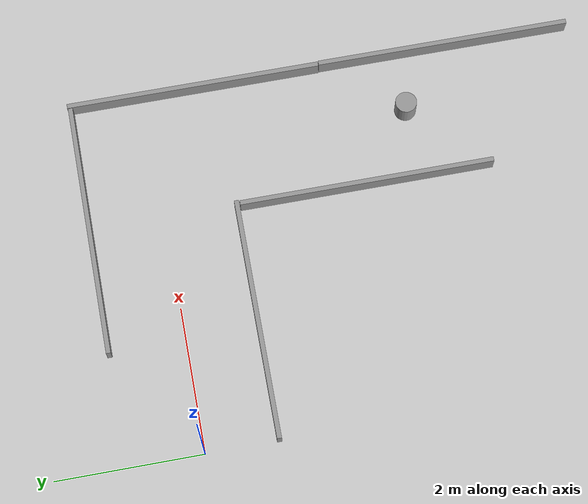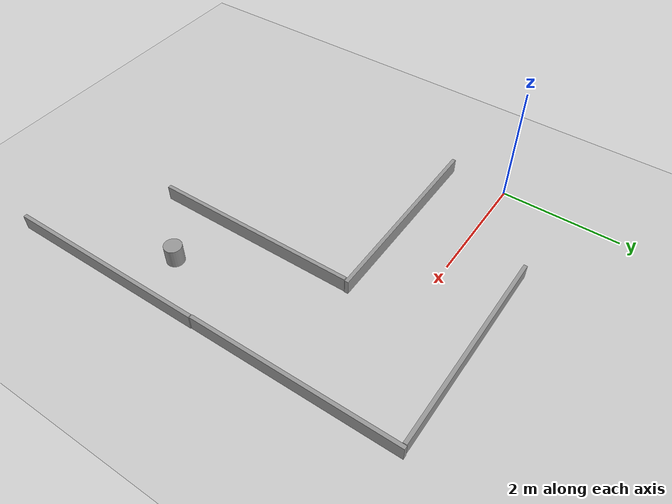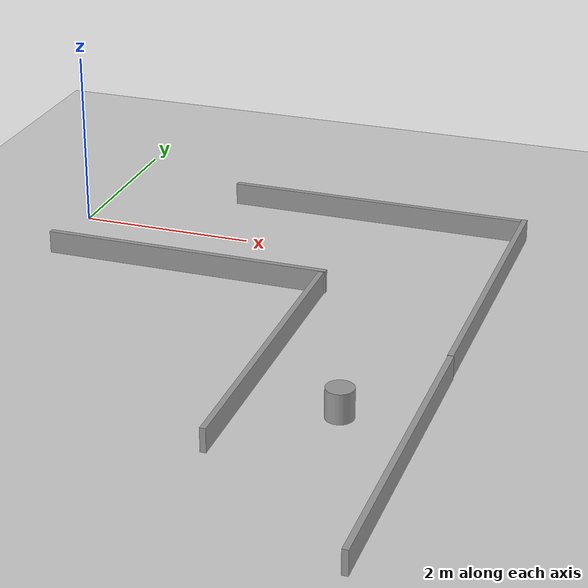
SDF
<sdf version="1.6">
 <world name="default">
  <light name="sun" type="directional">
   <pose>0 0 10 0 -0 0</pose>
   <diffuse>0.8 0.8 0.8 1</diffuse>
   <specular>0.2 0.2 0.2 1</specular>
   <attenuation>
    <range>1000</range>
    <constant>0.9</constant>
    <linear>0.01</linear>
    <quadratic>0.001</quadratic>
   </attenuation>
   <direction>-0.5 0.1 -0.9</direction>
   <spot><inner_angle>0</inner_angle><outer_angle>0</outer_angle><falloff>0</falloff></spot>
  </light>
  <model name="ground_plane">
   <static>1</static>
   <link name="link">
    <collision name="collision">
     <geometry><plane><normal>0 0 1</normal><size>100 100</size></plane></geometry>
     <surface><friction><ode><mu>100</mu><mu2>50</mu2></ode></friction></surface>
    </collision>
    <visual name="visual">
     <cast_shadows>0</cast_shadows>
     <geometry><plane><normal>0 0 1</normal><size>100 100</size></plane></geometry>
     <material>
      <script><uri>file://media/materials/scripts/gazebo.material</uri><name>Gazebo/Grey</name></script>
     </material>
    </visual>
   </link>
  </model>
  <gravity>0 0 -9.8</gravity>
  <magnetic_field>6e-06 2.3e-05 -4.2e-05</magnetic_field>
  <atmosphere type="adiabatic"/>
  <physics type="ode">
   <max_step_size>0.001</max_step_size>
   <real_time_factor>1</real_time_factor>
   <real_time_update_rate>1000</real_time_update_rate>
  </physics>
  <scene><ambient>0.4 0.4 0.4 1</ambient><background>0.7 0.7 0.7 1</background><shadows>1</shadows></scene>
  <spherical_coordinates>
   <surface_model>EARTH_WGS84</surface_model>
   <latitude_deg>0</latitude_deg>
   <longitude_deg>0</longitude_deg>
   <elevation>0</elevation>
   <heading_deg>0</heading_deg>
  </spherical_coordinates>
  <model name="unit_box">
   <pose>1.6404 -0.984582 0.129158 2.9e-05 -0.000282 0.000324</pose>
   <link name="link">
    <inertial>
     <mass>1</mass>
     <inertia>
      <ixx>0.166667</ixx>
      <ixy>0</ixy>
      <ixz>0</ixz>
      <iyy>0.166667</iyy>
      <iyz>0</iyz>
      <izz>0.166667</izz>
     </inertia>
    </inertial>
    <collision name="collision">
     <geometry><box><size>3.30281 0.0632256 0.259247</size></box></geometry>
    </collision>
    <visual name="visual">
     <geometry><box><size>3.30281 0.0632256 0.259247</size></box></geometry>
     <material>
      <script><name>Gazebo/Grey</name><uri>file://media/materials/scripts/gazebo.material</uri></script>
     </material>
    </visual>
   </link>
  </model>
  <model name="unit_box_clone">
   <pose>3.2584 1.03081 0.12933 0.0003 0.000173 3e-05</pose>
   <link name="link">
    <inertial>
     <mass>1</mass>
     <inertia>
      <ixx>0.166667</ixx>
      <ixy>0</ixy>
      <ixz>0</ixz>
      <iyy>0.166667</iyy>
      <iyz>0</iyz>
      <izz>0.166667</izz>
     </inertia>
    </inertial>
    <collision name="collision"><geometry><box><size>3.49852 0.063226 0.259247</size></box></geometry></collision>
    <visual name="visual">
     <geometry><box><size>3.49852 0.063226 0.259247</size></box></geometry>
     <material>
      <script><name>Gazebo/Grey</name><uri>file://media/materials/scripts/gazebo.material</uri></script>
     </material>
    </visual>
   </link>
  </model>
  <model name="unit_box_clone_clone">
   <pose>5.04703 -0.6794 0.12933 0.0003 0.000173 -1.57007</pose>
   <link name="link">
    <inertial>
     <mass>1</mass>
     <inertia>
      <ixx>0.166667</ixx>
      <ixy>0</ixy>
      <ixz>0</ixz>
      <iyy>0.166667</iyy>
      <iyz>0</iyz>
      <izz>0.166667</izz>
     </inertia>
    </inertial>
    <collision name="collision"><geometry><box><size>3.49853 0.063226 0.259247</size></box></geometry></collision>
    <visual name="visual">
     <geometry><box><size>3.49853 0.063226 0.259247</size></box></geometry>
     <material>
      <script><name>Gazebo/Grey</name><uri>file://media/materials/scripts/gazebo.material</uri></script>
     </material>
    </visual>
   </link>
  </model>
  <model name="unit_cylinder">
   <pose>4.24734 -3.50714 0.163575 -1e-06 -1e-06 0</pose>
   <link name="link">
    <inertial>
     <mass>1</mass>
     <inertia><ixx>0.145833</ixx><ixy>0</ixy><ixz>0</ixz><iyy>0.145833</iyy><iyz>0</iyz><izz>0.125</izz></inertia>
    </inertial>
    <collision name="collision">
     <geometry><cylinder><radius>0.147417</radius><length>0.327169</length></cylinder></geometry>
    </collision>
    <visual name="visual">
     <geometry><cylinder><radius>0.147417</radius><length>0.327169</length></cylinder></geometry>
     <material>
      <script><name>Gazebo/Grey</name><uri>file://media/materials/scripts/gazebo.material</uri></script>
     </material>
    </visual>
   </link>
  </model>
  <model name="unit_box_clone_clone_clone">
   <pose>5.05802 -4.18651 0.129305 0.000303 0.000187 -1.57007</pose>
   <link name="link">
    <inertial>
     <mass>1</mass>
     <inertia>
      <ixx>0.166667</ixx>
      <ixy>0</ixy>
      <ixz>0</ixz>
      <iyy>0.166667</iyy>
      <iyz>0</iyz>
      <izz>0.166667</izz>
     </inertia>
    </inertial>
    <collision name="collision"><geometry><box><size>3.49853 0.063226 0.259247</size></box></geometry></collision>
    <visual name="visual">
     <geometry><box><size>3.49853 0.063226 0.259247</size></box></geometry>
     <material>
      <script><name>Gazebo/Grey</name><uri>file://media/materials/scripts/gazebo.material</uri></script>
     </material>
    </visual>
   </link>
  </model>
  <model name="unit_box_clone_clone_clone_clone">
   <pose>3.25184 -2.7773 0.129305 0.000304 0.000187 -1.57007</pose>
   <link name="link">
    <inertial>
     <mass>1</mass>
     <inertia>
      <ixx>0.166667</ixx>
      <ixy>0</ixy>
      <ixz>0</ixz>
      <iyy>0.166667</iyy>
      <iyz>0</iyz>
      <izz>0.166667</izz>
     </inertia>
    </inertial>
    <collision name="collision"><geometry><box><size>3.49853 0.063226 0.259247</size></box></geometry></collision>
    <visual name="visual">
     <geometry><box><size>3.49853 0.063226 0.259247</size></box></geometry>
     <material>
      <script><name>Gazebo/Grey</name><uri>file://media/materials/scripts/gazebo.material</uri></script>
     </material>
    </visual>
   </link>
  </model>
 </world>
</sdf>
